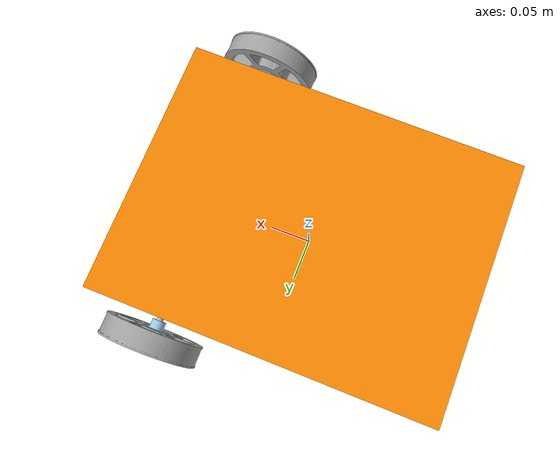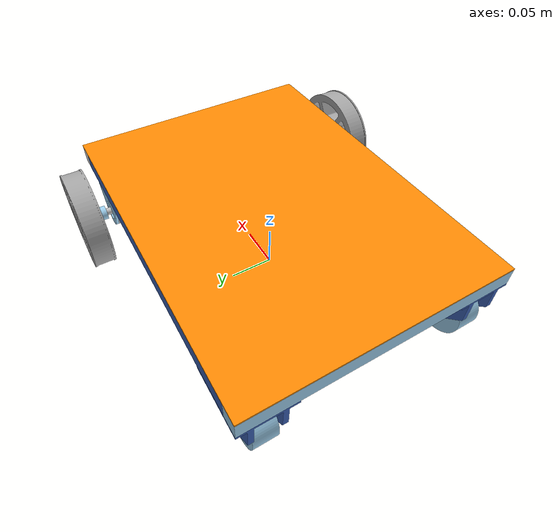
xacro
<?xml version="1.0" ?>
<!-- Generated using onshape-to-robot -->
<!-- Onshape https://cad.onshape.com/documents/4209ac7f0152411e9d4dcbf0/w/3377871fe4109e8e8f25bc5b/e/d6705610344c69e12c64875a -->
<robot xmlns:xacro="http://www.ros.org/wiki/xacro">

<!-- MANUAL INPUT -->

<link name="base_footprint"/>
<joint name="base_joint" type="fixed">
    <parent link="base_footprint"/>
    <child link="base_link"/>
    <origin xyz="0.0 0.0 0.0" rpy="0.0 0.0 0.0"/>
</joint>

<!-- FROM ONSHAPE2ROBOT -->

 <!-- Link base_link -->
  <link name="base_link">
    <inertial>
      <origin xyz="0.0163694 0 0.0908814" rpy="0 0 0"/>
      <mass value="2.05848"/>
      <inertia ixx="0.0244416" ixy="0" ixz="6.33966e-05" iyy="0.0401005" iyz="0" izz="0.0643575"/>
    </inertial>
    <!-- Part part_5 -->
    <visual>
      <origin xyz="0 0 0.079" rpy="-0 0 1.5708"/>
      <geometry>
        <mesh filename="package://mini_agv_description/assets/part_5.stl"/>
      </geometry>
      <material name="part_5_material">
        <color rgba="0.768627 0.886275 0.952941 1"/>
      </material>
    </visual>
    <collision>
      <origin xyz="0 0 0.079" rpy="-0 0 1.5708"/>
      <geometry>
        <mesh filename="package://mini_agv_description/assets/part_5.stl"/>
      </geometry>
    </collision>
    <!-- Part part_6 -->
    <visual>
      <origin xyz="0 0 0.079" rpy="-0 0 1.5708"/>
      <geometry>
        <mesh filename="package://mini_agv_description/assets/part_6.stl"/>
      </geometry>
      <material name="part_6_material">
        <color rgba="0.972549 0.529412 0.00392157 1"/>
      </material>
    </visual>
    <collision>
      <origin xyz="0 0 0.079" rpy="-0 0 1.5708"/>
      <geometry>
        <mesh filename="package://mini_agv_description/assets/part_6.stl"/>
      </geometry>
    </collision>
    <!-- Part part_3 -->
    <visual>
      <origin xyz="0 0 0.079" rpy="-0 0 1.5708"/>
      <geometry>
        <mesh filename="package://mini_agv_description/assets/part_3.stl"/>
      </geometry>
      <material name="part_3_material">
        <color rgba="0.231373 0.380392 0.705882 1"/>
      </material>
    </visual>
    <collision>
      <origin xyz="0 0 0.079" rpy="-0 0 1.5708"/>
      <geometry>
        <mesh filename="package://mini_agv_description/assets/part_3.stl"/>
      </geometry>
    </collision>
    <!-- Part part_4 -->
    <visual>
      <origin xyz="0 0 0.079" rpy="-0 0 1.5708"/>
      <geometry>
        <mesh filename="package://mini_agv_description/assets/part_4.stl"/>
      </geometry>
      <material name="part_4_material">
        <color rgba="0.917647 0.917647 0.917647 1"/>
      </material>
    </visual>
    <collision>
      <origin xyz="0 0 0.079" rpy="-0 0 1.5708"/>
      <geometry>
        <mesh filename="package://mini_agv_description/assets/part_4.stl"/>
      </geometry>
    </collision>
    <!-- Part part_2 -->
    <visual>
      <origin xyz="0 0 0.079" rpy="-0 0 1.5708"/>
      <geometry>
        <mesh filename="package://mini_agv_description/assets/part_2.stl"/>
      </geometry>
      <material name="part_2_material">
        <color rgba="0.647059 0.647059 0.647059 1"/>
      </material>
    </visual>
    <collision>
      <origin xyz="0 0 0.079" rpy="-0 0 1.5708"/>
      <geometry>
        <mesh filename="package://mini_agv_description/assets/part_2.stl"/>
      </geometry>
    </collision>
    <!-- Part part_1 -->
    <visual>
      <origin xyz="0 0 0.079" rpy="-0 0 1.5708"/>
      <geometry>
        <mesh filename="package://mini_agv_description/assets/part_1.stl"/>
      </geometry>
      <material name="part_1_material">
        <color rgba="0.615686 0.811765 0.929412 1"/>
      </material>
    </visual>
    <collision>
      <origin xyz="0 0 0.079" rpy="-0 0 1.5708"/>
      <geometry>
        <mesh filename="package://mini_agv_description/assets/part_1.stl"/>
      </geometry>
    </collision>
  </link>
  <!-- Link pg36_assy -->
  <link name="pg36_assy_link">
    <inertial>
      <origin xyz="-1.21e-10 0.0513289 -0.0214366" rpy="0 0 0"/>
      <mass value="0.313209"/>
      <inertia ixx="0.000352725" ixy="-2e-12" ixz="-0" iyy="6.98889e-05" iyz="8.02005e-06" izz="0.000348643"/>
    </inertial>
    <!-- Part pg36_body -->
    <visual>
      <origin xyz="0 -0.007 -0.023" rpy="1.5708 -1.5708 0"/>
      <geometry>
        <mesh filename="package://mini_agv_description/assets/pg36_body.stl"/>
      </geometry>
      <material name="pg36_body_material">
        <color rgba="0.74902 0.74902 0.74902 1"/>
      </material>
    </visual>
    <collision>
      <origin xyz="0 -0.007 -0.023" rpy="1.5708 -1.5708 0"/>
      <geometry>
        <mesh filename="package://mini_agv_description/assets/pg36_body.stl"/>
      </geometry>
    </collision>
    <!-- Part bracket_body -->
    <visual>
      <origin xyz="-0 -0.0072 -0.023" rpy="-1.5708 0 -0"/>
      <geometry>
        <mesh filename="package://mini_agv_description/assets/bracket_body.stl"/>
      </geometry>
      <material name="bracket_body_material">
        <color rgba="0.615686 0.811765 0.929412 1"/>
      </material>
    </visual>
    <collision>
      <origin xyz="-0 -0.0072 -0.023" rpy="-1.5708 0 -0"/>
      <geometry>
        <mesh filename="package://mini_agv_description/assets/bracket_body.stl"/>
      </geometry>
    </collision>
    <!-- Part bracket_shaft -->
    <visual>
      <origin xyz="0 -0.01 -0.023" rpy="-1.5708 -0 0"/>
      <geometry>
        <mesh filename="package://mini_agv_description/assets/bracket_shaft.stl"/>
      </geometry>
      <material name="bracket_shaft_material">
        <color rgba="0.615686 0.811765 0.929412 1"/>
      </material>
    </visual>
    <collision>
      <origin xyz="0 -0.01 -0.023" rpy="-1.5708 -0 0"/>
      <geometry>
        <mesh filename="package://mini_agv_description/assets/bracket_shaft.stl"/>
      </geometry>
    </collision>
    <!-- Part pg36_shaft -->
    <visual>
      <origin xyz="0 -0.007 -0.023" rpy="1.5708 -1.5708 0"/>
      <geometry>
        <mesh filename="package://mini_agv_description/assets/pg36_shaft.stl"/>
      </geometry>
      <material name="pg36_shaft_material">
        <color rgba="0.74902 0.74902 0.74902 1"/>
      </material>
    </visual>
    <collision>
      <origin xyz="0 -0.007 -0.023" rpy="1.5708 -1.5708 0"/>
      <geometry>
        <mesh filename="package://mini_agv_description/assets/pg36_shaft.stl"/>
      </geometry>
    </collision>
  </link>
  <!-- Link wheel_hub_assy -->
  <link name="wheel_hub_assy_link">
    <inertial>
      <origin xyz="0 0 0.00843384" rpy="0 0 0"/>
      <mass value="0.177204"/>
      <inertia ixx="0.000154537" ixy="-0" ixz="-0" iyy="0.000154537" iyz="-0" izz="0.000289564"/>
    </inertial>
    <!-- Part wheel -->
    <visual>
      <origin xyz="-0 0 0" rpy="1.5708 -0 -0"/>
      <geometry>
        <mesh filename="package://mini_agv_description/assets/wheel.stl"/>
      </geometry>
      <material name="wheel_material">
        <color rgba="0.647059 0.647059 0.647059 1"/>
      </material>
    </visual>
    <collision>
      <origin xyz="-0 0 0" rpy="1.5708 -0 -0"/>
      <geometry>
        <mesh filename="package://mini_agv_description/assets/wheel.stl"/>
      </geometry>
    </collision>
    <!-- Part 8mm_flange_hub -->
    <visual>
      <origin xyz="-0 0 0" rpy="1.5708 -0 -0"/>
      <geometry>
        <mesh filename="package://mini_agv_description/assets/8mm_flange_hub.stl"/>
      </geometry>
      <material name="8mm_flange_hub_material">
        <color rgba="0.615686 0.811765 0.929412 1"/>
      </material>
    </visual>
    <collision>
      <origin xyz="-0 0 0" rpy="1.5708 -0 -0"/>
      <geometry>
        <mesh filename="package://mini_agv_description/assets/8mm_flange_hub.stl"/>
      </geometry>
    </collision>
  </link>
  <!-- Joint from pg36_assy to wheel_hub_assy -->
  <joint name="wheel_left_joint" type="continuous">
    <origin xyz="0 -0.0283 -0.023" rpy="-1.5708 1.55965 -3.14159"/>
    <parent link="pg36_assy_link"/>
    <child link="wheel_hub_assy_link"/>
    <axis xyz="0 0 1"/>  <!-- reverse the direction -->
    <limit effort="10" velocity="10"/>
  </joint>
  <!-- Joint from base_link to pg36_assy -->
  <joint name="motor_left_joint" type="fixed">
    <origin xyz="0.12 0.14 0.079" rpy="-0 0 -3.14159"/>
    <parent link="base_link"/>
    <child link="pg36_assy_link"/>
    <axis xyz="0 0 1"/>
    <limit effort="10" velocity="10"/>
  </joint>
  <!-- Link pg36_assy_2 -->
  <link name="pg36_assy_2_link">
    <inertial>
      <origin xyz="-1.21e-10 0.0513289 -0.0214366" rpy="0 0 0"/>
      <mass value="0.313209"/>
      <inertia ixx="0.000352725" ixy="-2e-12" ixz="-0" iyy="6.98889e-05" iyz="8.02005e-06" izz="0.000348643"/>
    </inertial>
    <!-- Part pg36_body_2 -->
    <visual>
      <origin xyz="-0 -0.007 -0.023" rpy="1.5708 -1.5708 0"/>
      <geometry>
        <mesh filename="package://mini_agv_description/assets/pg36_body.stl"/>
      </geometry>
      <material name="pg36_body_2_material">
        <color rgba="0.74902 0.74902 0.74902 1"/>
      </material>
    </visual>
    <collision>
      <origin xyz="-0 -0.007 -0.023" rpy="1.5708 -1.5708 0"/>
      <geometry>
        <mesh filename="package://mini_agv_description/assets/pg36_body.stl"/>
      </geometry>
    </collision>
    <!-- Part bracket_body_2 -->
    <visual>
      <origin xyz="-0 -0.0072 -0.023" rpy="-1.5708 0 0"/>
      <geometry>
        <mesh filename="package://mini_agv_description/assets/bracket_body.stl"/>
      </geometry>
      <material name="bracket_body_2_material">
        <color rgba="0.615686 0.811765 0.929412 1"/>
      </material>
    </visual>
    <collision>
      <origin xyz="-0 -0.0072 -0.023" rpy="-1.5708 0 0"/>
      <geometry>
        <mesh filename="package://mini_agv_description/assets/bracket_body.stl"/>
      </geometry>
    </collision>
    <!-- Part bracket_shaft_2 -->
    <visual>
      <origin xyz="-0 -0.01 -0.023" rpy="-1.5708 -0 -0"/>
      <geometry>
        <mesh filename="package://mini_agv_description/assets/bracket_shaft.stl"/>
      </geometry>
      <material name="bracket_shaft_2_material">
        <color rgba="0.615686 0.811765 0.929412 1"/>
      </material>
    </visual>
    <collision>
      <origin xyz="-0 -0.01 -0.023" rpy="-1.5708 -0 -0"/>
      <geometry>
        <mesh filename="package://mini_agv_description/assets/bracket_shaft.stl"/>
      </geometry>
    </collision>
    <!-- Part pg36_shaft_2 -->
    <visual>
      <origin xyz="-0 -0.007 -0.023" rpy="1.5708 -1.5708 0"/>
      <geometry>
        <mesh filename="package://mini_agv_description/assets/pg36_shaft.stl"/>
      </geometry>
      <material name="pg36_shaft_2_material">
        <color rgba="0.74902 0.74902 0.74902 1"/>
      </material>
    </visual>
    <collision>
      <origin xyz="-0 -0.007 -0.023" rpy="1.5708 -1.5708 0"/>
      <geometry>
        <mesh filename="package://mini_agv_description/assets/pg36_shaft.stl"/>
      </geometry>
    </collision>
  </link>
  <!-- Link wheel_hub_assy_2 -->
  <link name="wheel_hub_assy_2_link">
    <inertial>
      <origin xyz="0 0 0.00843384" rpy="0 0 0"/>
      <mass value="0.177204"/>
      <inertia ixx="0.000154537" ixy="0" ixz="0" iyy="0.000154537" iyz="-0" izz="0.000289564"/>
    </inertial>
    <!-- Part wheel_2 -->
    <visual>
      <origin xyz="0 0 -0" rpy="1.5708 -0 0"/>
      <geometry>
        <mesh filename="package://mini_agv_description/assets/wheel.stl"/>
      </geometry>
      <material name="wheel_2_material">
        <color rgba="0.647059 0.647059 0.647059 1"/>
      </material>
    </visual>
    <collision>
      <origin xyz="0 0 -0" rpy="1.5708 -0 0"/>
      <geometry>
        <mesh filename="package://mini_agv_description/assets/wheel.stl"/>
      </geometry>
    </collision>
    <!-- Part 8mm_flange_hub_2 -->
    <visual>
      <origin xyz="0 -0 -0" rpy="1.5708 -0 -0"/>
      <geometry>
        <mesh filename="package://mini_agv_description/assets/8mm_flange_hub.stl"/>
      </geometry>
      <material name="8mm_flange_hub_2_material">
        <color rgba="0.615686 0.811765 0.929412 1"/>
      </material>
    </visual>
    <collision>
      <origin xyz="0 -0 -0" rpy="1.5708 -0 -0"/>
      <geometry>
        <mesh filename="package://mini_agv_description/assets/8mm_flange_hub.stl"/>
      </geometry>
    </collision>
  </link>
  <!-- Joint from pg36_assy_2 to wheel_hub_assy_2 -->
  <joint name="wheel_right_joint" type="continuous">
    <origin xyz="-0 -0.0283 -0.023" rpy="1.5708 1.5708 0"/>
    <parent link="pg36_assy_2_link"/>
    <child link="wheel_hub_assy_2_link"/>
    <axis xyz="0 0 -1"/>
    <limit effort="10" velocity="10"/>
  </joint>
  <!-- Joint from base_link to pg36_assy_2 -->
  <joint name="motor_right_joint" type="fixed">
    <origin xyz="0.12 -0.14 0.079" rpy="-0 -0 0"/>
    <parent link="base_link"/>
    <child link="pg36_assy_2_link"/>
    <axis xyz="0 0 1"/>
    <limit effort="10" velocity="10"/>
  </joint>
  <!-- Link caster_frame -->
  <link name="caster_frame_link">
    <inertial>
      <origin xyz="0 -0 -0.0201897" rpy="0 0 0"/>
      <mass value="0.0626507"/>
      <inertia ixx="3.42636e-05" ixy="-0" ixz="0" iyy="3.81143e-05" iyz="0" izz="3.79824e-05"/>
    </inertial>
    <!-- Part caster_frame -->
    <visual>
      <origin xyz="0 0.0135 -0.04825" rpy="0 -0 -0"/>
      <geometry>
        <mesh filename="package://mini_agv_description/assets/caster_frame.stl"/>
      </geometry>
      <material name="caster_frame_material">
        <color rgba="0.231373 0.380392 0.705882 1"/>
      </material>
    </visual>
    <collision>
      <origin xyz="0 0.0135 -0.04825" rpy="0 -0 -0"/>
      <geometry>
        <mesh filename="package://mini_agv_description/assets/caster_frame.stl"/>
      </geometry>
    </collision>
  </link>
  <!-- Link caster_wheel -->
  <link name="caster_wheel_link">
    <inertial>
      <origin xyz="0 -0 -0.0135" rpy="0 0 0"/>
      <mass value="0.122328"/>
      <inertia ixx="3.90245e-05" ixy="0" ixz="0" iyy="3.90245e-05" iyz="0" izz="6.31861e-05"/>
    </inertial>
    <!-- Part caster_wheel -->
    <visual>
      <origin xyz="0 0 0" rpy="1.5708 -0 0"/>
      <geometry>
        <mesh filename="package://mini_agv_description/assets/caster_wheel.stl"/>
      </geometry>
      <material name="caster_wheel_material">
        <color rgba="0.615686 0.811765 0.929412 1"/>
      </material>
    </visual>
    <collision>
      <origin xyz="0 0 0" rpy="1.5708 -0 0"/>
      <geometry>
        <mesh filename="package://mini_agv_description/assets/caster_wheel.stl"/>
      </geometry>
    </collision>
  </link>
  <!-- Joint from caster_frame to caster_wheel -->
  <joint name="caster_wheel_left_joint" type="continuous">
    <origin xyz="0 0.0135 -0.04825" rpy="-1.5708 -1.5708 0"/>
    <parent link="caster_frame_link"/>
    <child link="caster_wheel_link"/>
    <axis xyz="0 0 1"/>
    <limit effort="10" velocity="10"/>
  </joint>
  <!-- Joint from base_link to caster_frame -->
  <joint name="caster_left_joint" type="fixed">
    <origin xyz="-0.165 0.12 0.079" rpy="0 0 -3.14159"/>
    <parent link="base_link"/>
    <child link="caster_frame_link"/>
    <axis xyz="0 0 1"/>
    <limit effort="10" velocity="10"/>
  </joint>
  <!-- Link caster_frame_2 -->
  <link name="caster_frame_2_link">
    <inertial>
      <origin xyz="-0 -0 -0.0201897" rpy="0 0 0"/>
      <mass value="0.0626507"/>
      <inertia ixx="3.42636e-05" ixy="0" ixz="0" iyy="3.81143e-05" iyz="-0" izz="3.79824e-05"/>
    </inertial>
    <!-- Part caster_frame_2 -->
    <visual>
      <origin xyz="-0 0.0135 -0.04825" rpy="-0 -0 0"/>
      <geometry>
        <mesh filename="package://mini_agv_description/assets/caster_frame.stl"/>
      </geometry>
      <material name="caster_frame_2_material">
        <color rgba="0.231373 0.380392 0.705882 1"/>
      </material>
    </visual>
    <collision>
      <origin xyz="-0 0.0135 -0.04825" rpy="-0 -0 0"/>
      <geometry>
        <mesh filename="package://mini_agv_description/assets/caster_frame.stl"/>
      </geometry>
    </collision>
  </link>
  <!-- Link caster_wheel_2 -->
  <link name="caster_wheel_2_link">
    <inertial>
      <origin xyz="-0 -0 -0.0135" rpy="0 0 0"/>
      <mass value="0.122328"/>
      <inertia ixx="3.90245e-05" ixy="0" ixz="-0" iyy="3.90245e-05" iyz="-0" izz="6.31861e-05"/>
    </inertial>
    <!-- Part caster_wheel_2 -->
    <visual>
      <origin xyz="-0 0 0" rpy="1.5708 -0 -0"/>
      <geometry>
        <mesh filename="package://mini_agv_description/assets/caster_wheel.stl"/>
      </geometry>
      <material name="caster_wheel_2_material">
        <color rgba="0.615686 0.811765 0.929412 1"/>
      </material>
    </visual>
    <collision>
      <origin xyz="-0 0 0" rpy="1.5708 -0 -0"/>
      <geometry>
        <mesh filename="package://mini_agv_description/assets/caster_wheel.stl"/>
      </geometry>
    </collision>
  </link>
  <!-- Joint from caster_frame_2 to caster_wheel_2 -->
  <joint name="caster_wheel_right_joint" type="continuous">
    <origin xyz="-0 -0.0135 -0.04825" rpy="1.5708 1.5708 0"/>
    <parent link="caster_frame_2_link"/>
    <child link="caster_wheel_2_link"/>
    <axis xyz="0 0 1"/>
    <limit effort="10" velocity="10"/>
  </joint>
  <!-- Joint from base_link to caster_frame_2 -->
  <joint name="caster_right_joint" type="fixed">
    <origin xyz="-0.165 -0.12 0.079" rpy="0 0 -3.14159"/>
    <parent link="base_link"/>
    <child link="caster_frame_2_link"/>
    <axis xyz="0 0 1"/>
    <limit effort="10" velocity="10"/>
  </joint>

</robot>
